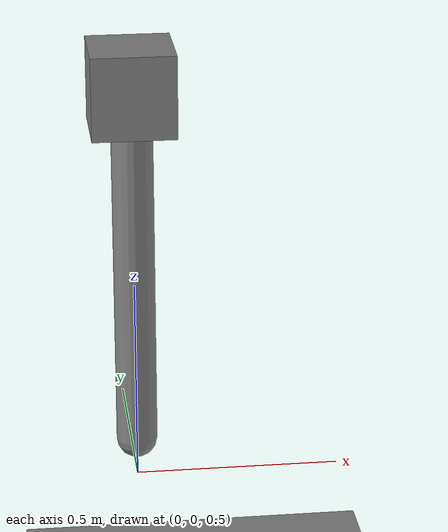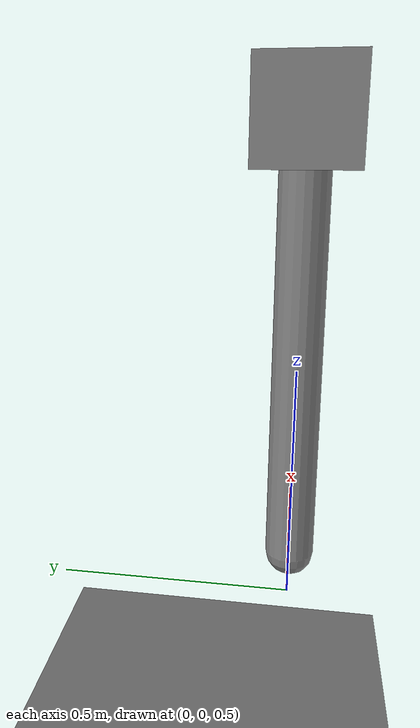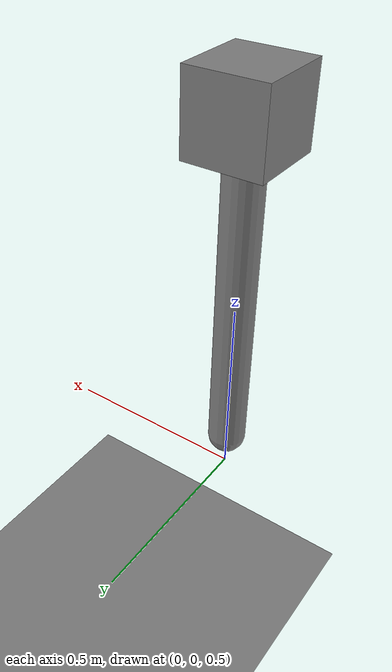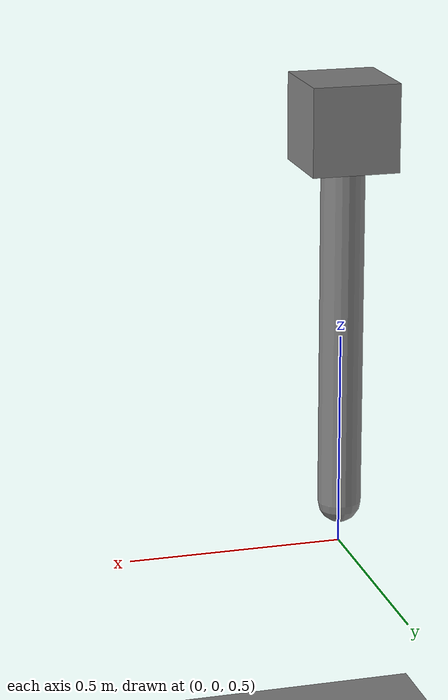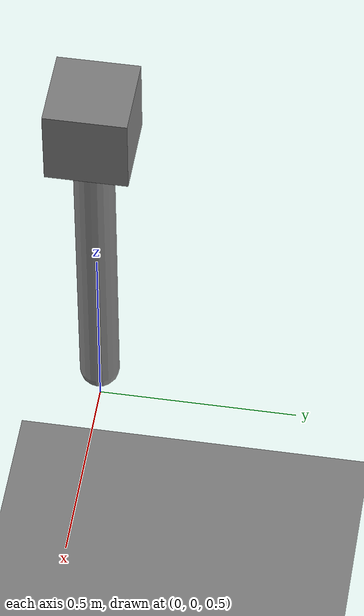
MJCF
<mujoco model="pendulum_test">

    <option
        timestep="0.002"
        gravity="0 0 -9.81"
    />

    <worldbody>

        <geom
            name="ground"
            type="plane"
            size="5 5 0.1"
            pos="0 0 0"
        />

        <body
            name="pendulum_base"
            pos="0 0 1.5"
        >

            <geom
                name="base"
                type="box"
                size="0.1 0.1 0.1"
                mass="1.0"
            />

            <body
                name="pendulum_link"
                pos="0 0 -0.1"
            >

                <joint
                    name="pendulum_joint"
                    type="hinge"
                    axis="0 1 0"
                    range="-90 90"
                    damping="0.0"
                />

                <geom
                    name="link"
                    type="capsule"
                    fromto="0 0 0  0 0 -0.8"
                    size="0.05"
                    mass="1.0"
                />

            </body>

        </body>

    </worldbody>

</mujoco>
